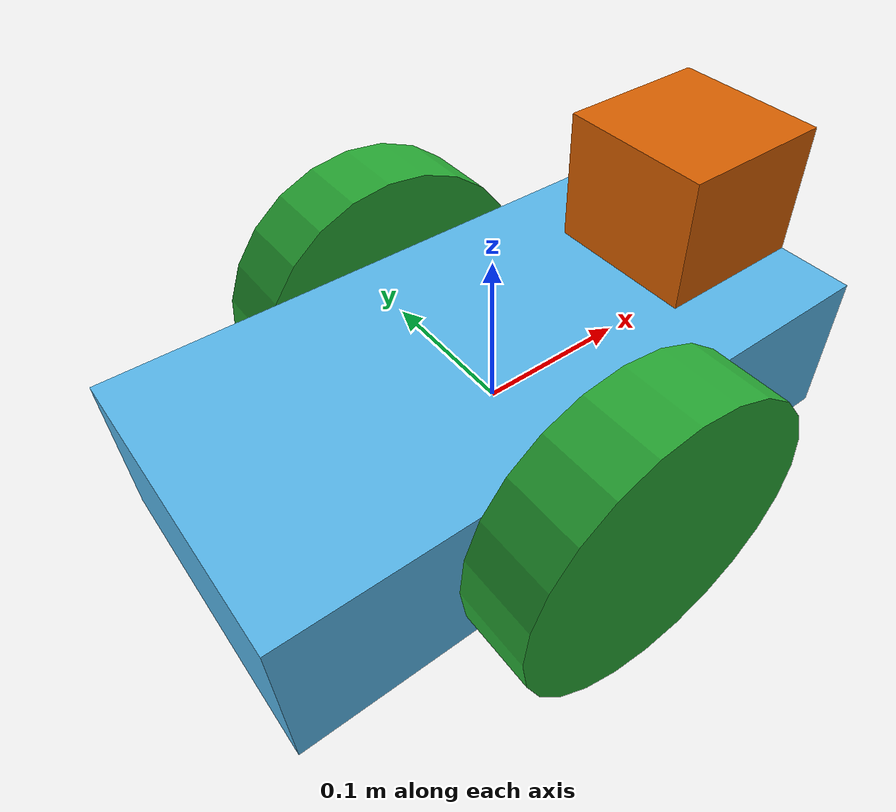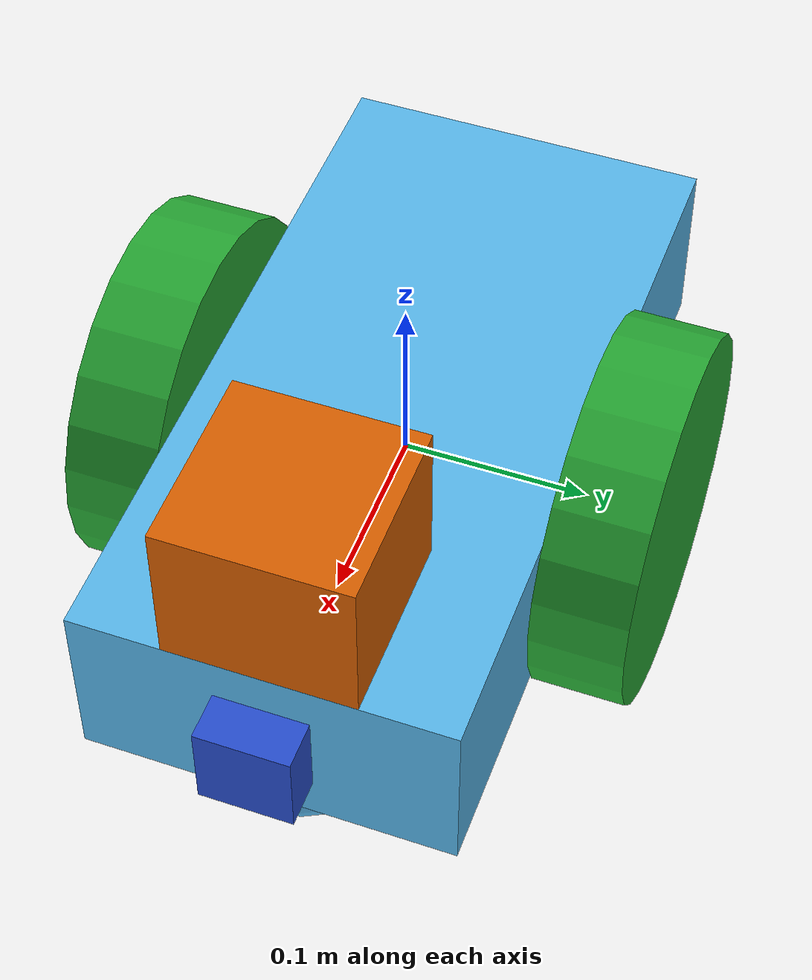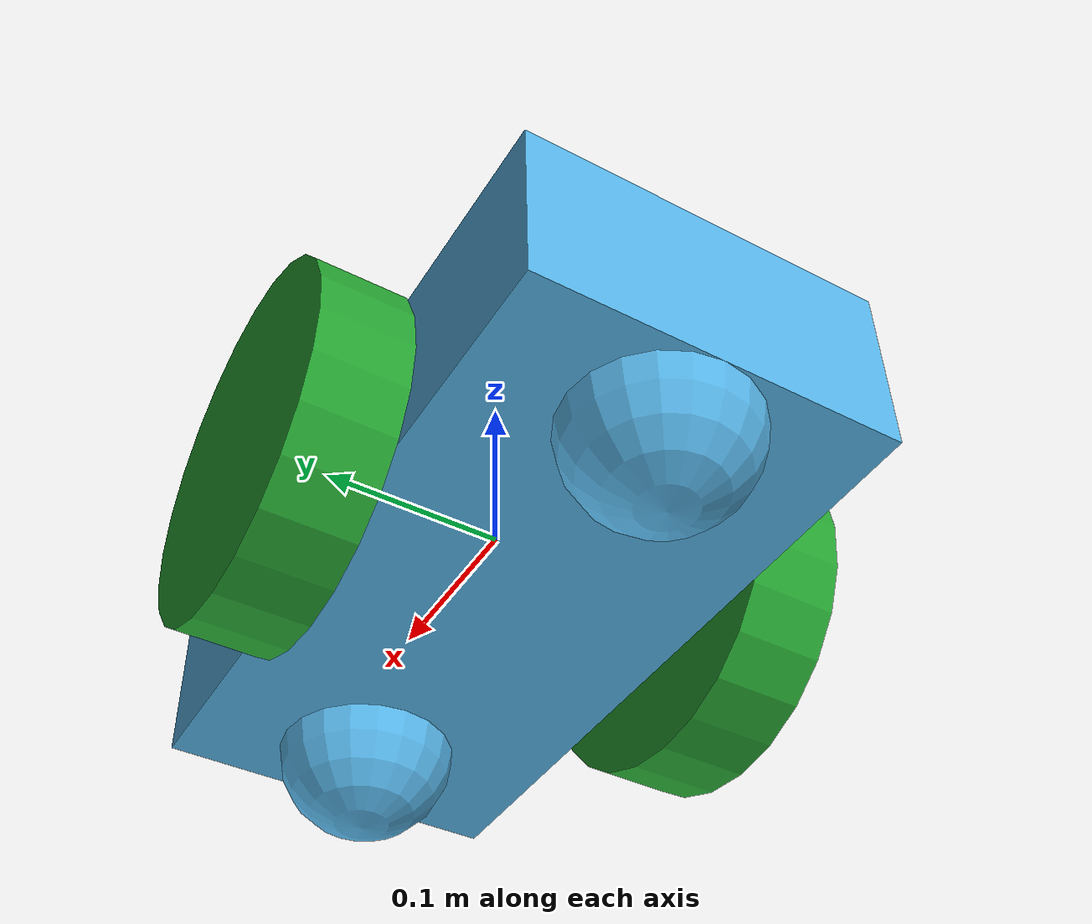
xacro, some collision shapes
<?xml version='1.0'?>

<robot name="my_robot" xmlns:xacro="http://www.ros.org/wiki/xacro">
<xacro:include filename="$(find my_robot)/urdf/my_robot.gazebo" />

<gazebo reference="left_wheel">
    <material>Gazebo/Green</material>
</gazebo>
<gazebo reference="right_wheel">
    <material>Gazebo/Green</material>
</gazebo>
<gazebo reference="camera">
    <material>Gazebo/Blue</material>
</gazebo>
<gazebo reference="chassis">
  <visual>
    <material>
      <ambient>0.8225 0.19225 0.19225 1.0</ambient>
      <diffuse>0.50754 0.50754 0.50754 1.0</diffuse>
      <specular>0.508273 0.508273 0.508273 1.0</specular>
      <emissive>0.0 0.0 0.0 0.0</emissive>
    </material>
  </visual>
</gazebo>

  <link name="robot_footprint"></link>

  <joint name="robot_footprint_joint" type="fixed">
    <origin xyz="0 0 0" rpy="0 0 0" />
    <parent link="robot_footprint"/>
    <child link="chassis" />
  </joint>

  <link name='chassis'>
    <pose>0 0 0.1 0 0 0</pose>

    <inertial>
      <mass value="15.0"/>
      <origin xyz="0.0 0 0" rpy=" 0 0 0"/>
      <inertia
          ixx="0.1" ixy="0" ixz="0"
          iyy="0.1" iyz="0"
          izz="0.1"/>
    </inertial>

    <collision>
      <origin xyz="0 0 0" rpy=" 0 0 0"/>
      <geometry>
        <box size=".4 .2 .1"/>
      </geometry>
    </collision>

    <visual>
      <origin xyz="0 0 0" rpy=" 0 0 0"/>
      <geometry>
        <box size=".4 .2 .1"/>
      </geometry>
    </visual>

    <collision>
      <origin xyz="-0.15 0 -0.05" rpy=" 0 0 0"/>
      <geometry>
        <sphere radius="0.0499"/>
      </geometry>
    </collision>

    <visual>
      <origin xyz="-0.15 0 -0.05" rpy=" 0 0 0"/>
      <geometry>
        <sphere radius="0.05"/>
      </geometry>
    </visual>

    <collision>
      <origin xyz="0.15 0 -0.05" rpy=" 0 0 0"/>
      <geometry>
        <sphere radius="0.0499"/>
      </geometry>
    </collision>

    <visual>
      <origin xyz="0.15 0 -0.05" rpy=" 0 0 0"/>
      <geometry>
        <sphere radius="0.05"/>
      </geometry>
    </visual>
  </link>

  <link name="left_wheel">
     <inertial>
      <mass value="5.0"/>
      <origin xyz="0 0 0" rpy=" 0 1.5707 1.5707"/>
      <inertia
          ixx="0.1" ixy="0" ixz="0"
          iyy="0.1" iyz="0"
          izz="0.1"/>
    </inertial>

    <collision>
      <origin xyz="0 0 0" rpy=" 0 1.5707 1.5707"/>
      <geometry>
        <cylinder radius="0.1" length="0.05"/>
      </geometry>
    </collision>

    <visual>
      <origin xyz="0 0 0" rpy=" 0 1.5707 1.5707"/>
      <geometry>
        <cylinder radius="0.1" length="0.05"/>
      </geometry>
    </visual>
  </link>

  <link name="right_wheel">
    <inertial>
      <mass value="5.0"/>
      <origin xyz="0 0 0" rpy=" 0 1.5707 1.5707"/>
      <inertia
          ixx="0.1" ixy="0" ixz="0"
          iyy="0.1" iyz="0"
          izz="0.1"/>
    </inertial>

    <collision>
      <origin xyz="0 0 0" rpy=" 0 1.5707 1.5707"/>
      <geometry>
        <cylinder radius="0.1" length="0.05"/>
      </geometry>
    </collision>

    <visual>
      <origin xyz="0 0 0" rpy=" 0 1.5707 1.5707"/>
      <geometry>
        <cylinder radius="0.1" length="0.05"/>
      </geometry>
    </visual>
  </link>

  <joint type="continuous" name="left_wheel_hinge">
    <origin xyz="0 0.126 0" rpy="0 0 0"/>
    <child link="left_wheel"/>
    <parent link="chassis"/>
    <axis xyz="0 1 0" rpy="0 0 0"/>
    <limit effort="10000" velocity="1000"/>
    <dynamics damping="1.0" friction="1.0"/>
  </joint>

  <joint type="continuous" name="right_wheel_hinge">
    <origin xyz="0 -0.126 0" rpy="0 0 0"/>
    <child link="right_wheel"/>
    <parent link="chassis"/>
    <axis xyz="0 1 0" rpy="0 0 0"/>
    <limit effort="10000" velocity="1000"/>
    <dynamics damping="1.0" friction="1.0"/>
  </joint>

  <link name="camera">
    <inertial>
      <mass value="0.1"/>
      <origin xyz="0.0 0 0" rpy=" 0 0 0"/>
      <inertia
            ixx="1e-6" ixy="0" ixz="0"
            iyy="1e-6" iyz="0"
            izz="1e-6"/>
    </inertial>

    <collision>
      <origin xyz="0 0 0" rpy="0 0 0" />
      <geometry>
          <box size="0.05 0.05 0.05"/>
      </geometry>
    </collision>

    <visual>
      <origin xyz="0 0 0" rpy="0 0 0" />
      <geometry>
          <box size="0.05 0.05 0.05"/>
      </geometry>
    </visual>
  </link>

  <joint type="fixed" name="camera_joint">
    <origin xyz="0.2 0 0" rpy="0 0 0"/>
    <child link="camera"/>
    <parent link="chassis"/>
    <axis xyz="0 1 0" rpy="0 0 0"/>
  </joint>

  <link name="hokuyo">
    <inertial>
      <mass value="1e-5"/>
      <origin xyz="0.0 0 0" rpy=" 0 0 0"/>
      <inertia
            ixx="1e-6" ixy="0" ixz="0"
            iyy="1e-6" iyz="0"
            izz="1e-6"/>
    </inertial>

    <collision>
      <origin xyz="0 0 0" rpy="0 0 0" />
      <geometry>
          <box size="0.1 0.1 0.1"/>
      </geometry>
    </collision>

    <visual>
      <origin xyz="0 0 0" rpy="0 0 0"/>
        <geometry>
          <mesh filename="package://my_robot/meshes/hokuyo.dae"/>
        </geometry>
    </visual>
  </link>

  <joint type="fixed" name="hokuyo_joint">
    <origin xyz="0.15 0 0.085" rpy="0 0 0"/>
    <child link="hokuyo"/>
    <parent link="chassis"/>
    <axis xyz="0 1 0" rpy="0 0 0"/>
  </joint>

</robot>
